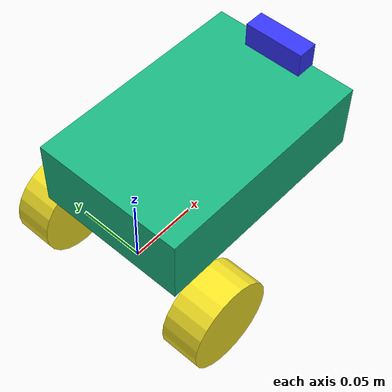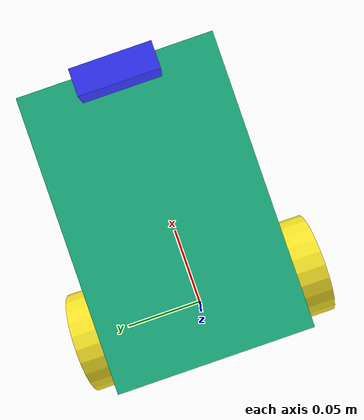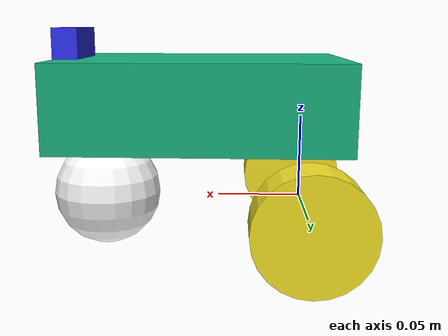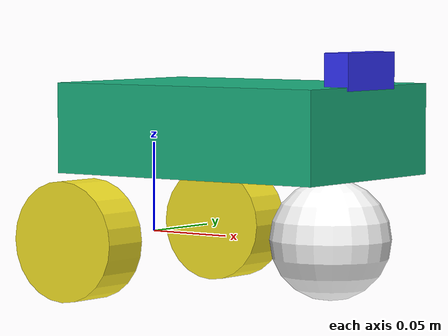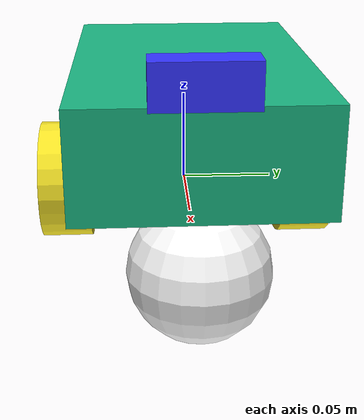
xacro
<?xml version="1.0"?>
<robot xmlns:xacro="http://www.ros.org/wiki/xacro"  name="robot">

    <!-- Example link -->
    <xacro:include filename="robot_core.xacro" />
    <xacro:include filename="sonar.xacro" />

</robot>

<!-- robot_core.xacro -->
<robot xmlns:xacro="http://www.ros.org/wiki/xacro" >

    <xacro:include filename="inertial_macros.xacro"/>

    <xacro:property name="chassis_length" value="0.1688"/>
    <xacro:property name="chassis_width" value="0.112"/>
    <xacro:property name="chassis_height" value="0.05"/>
    <xacro:property name="chassis_mass" value="1.0"/>
    <xacro:property name="wheel_radius" value="0.033"/>
    <xacro:property name="wheel_thickness" value="0.028"/>
    <xacro:property name="wheel_mass" value="0.3"/>
    <xacro:property name="wheel_offset_x" value="0.0238"/>
    <xacro:property name="wheel_offset_y" value="0.0675"/>
    <xacro:property name="wheel_offset_z" value="0.035"/>
    <xacro:property name="caster_wheel_radius" value="0.033"/>
    <xacro:property name="caster_wheel_mass" value="5"/>
    <xacro:property name="caster_wheel_offset_x" value="0.1438"/>
    <xacro:property name="caster_wheel_offset_z" value="${-caster_wheel_radius}"/>

    <material name="white">
        <color rgba="1 1 1 1"/>
    </material>

    <material name="yellow">
        <color rgba="0.96 0.89 0.15 1"/>
    </material>

    <material name="green">
        <color rgba="0.1 0.7 0.5 1"/>
    </material>

    <material name="orange">
        <color rgba="1 0.3 0.1 1"/>
    </material>

    <material name="blue">
        <color rgba="0.2 0.2 1 1"/>
    </material>

    <material name="black">
        <color rgba="0 0 0 1"/>
    </material>

    <material name="red">
        <color rgba="1 0 0 1"/>
    </material>

    <!-- BASE LINK -->

    <link name="base_link">

    </link>

    <!-- BASE_FOOTPRINT LINK -->

    <joint name="base_footprint_joint" type="fixed">
        <parent link="base_link"/>
        <child link="base_footprint"/>
        <origin xyz="0 0 0" rpy="0 0 0"/>
    </joint>

    <link name="base_footprint">
    </link>

    <!-- CHASSIS LINK -->

    <joint name="chassis_joint" type="fixed">
        <parent link="base_link"/>
        <child link="chassis"/>
        <origin xyz="${-wheel_offset_x} 0 ${wheel_offset_z}"/>
    </joint>

    <link name="chassis">
        <visual>
            <origin xyz="${chassis_length/2} 0 ${chassis_height/2}"/>
            <geometry>
                <box size="${chassis_length} ${chassis_width} ${chassis_height}"/>
            </geometry>
            <material name="green"/>
        </visual>
        <collision>
            <origin xyz="${chassis_length/2} 0 ${chassis_height/2}"/>
            <geometry>
                <box size="${chassis_length} ${chassis_width} ${chassis_height}"/>
            </geometry>
        </collision>
        <xacro:inertial_box mass="0.5" x="${chassis_length}" y="${chassis_width}" z="${chassis_height}">
            <origin xyz="${chassis_length/2} 0 ${chassis_height/2}" rpy="0 0 0"/>
        </xacro:inertial_box>
    </link>

    <gazebo reference="chassis">
        <material>Gazebo/Green</material>
    </gazebo>

    <!-- LEFT WHEEL LINK -->

    <joint name="left_wheel_joint" type="continuous">
        <parent link="base_link"/>
        <child link="left_wheel"/>
        <origin xyz="0 ${wheel_offset_y} 0" rpy="-${pi/2} 0 0"/>
        <axis xyz="0 0 1"/>
    </joint>

    <link name="left_wheel">
        <visual>
            <geometry>
                <cylinder radius="${wheel_radius}" length="${wheel_thickness}"/>
            </geometry>
            <material name="yellow"/>
        </visual>
        <collision>
            <geometry>
                <sphere radius="${wheel_radius}"/>
            </geometry>
        </collision>
        <xacro:inertial_cylinder mass="${wheel_mass}" length="${wheel_thickness}" radius="${wheel_radius}">
            <origin xyz="0 0 0" rpy="0 0 0"/>
        </xacro:inertial_cylinder>
    </link>

    <gazebo reference="left_wheel">
        <material>Gazebo/Yellow</material>
    </gazebo>

    <!-- RIGHT WHEEL LINK -->

    <joint name="right_wheel_joint" type="continuous">
        <parent link="base_link"/>
        <child link="right_wheel"/>
        <origin xyz="0 ${-wheel_offset_y} 0" rpy="${pi/2} 0 0" />
        <axis xyz="0 0 -1"/>
    </joint>

    <link name="right_wheel">
        <visual>
            <geometry>
                <cylinder radius="${wheel_radius}" length="${wheel_thickness}"/>
            </geometry>
            <material name="yellow"/>
        </visual>
        <collision>
            <geometry>
                <sphere radius="${wheel_radius}"/>
            </geometry>
        </collision>
        <xacro:inertial_cylinder mass="${wheel_mass}" length="${wheel_thickness}" radius="${wheel_radius}">
            <origin xyz="0 0 0" rpy="0 0 0"/>
        </xacro:inertial_cylinder>
    </link>

    <gazebo reference="right_wheel">
        <material>Gazebo/Yellow</material>
    </gazebo>

    <!-- CASTER WHEEL LINK -->

    <joint name="caster_wheel_joint" type="fixed">
        <parent link="chassis"/>
        <child link="caster_wheel"/>
        <origin xyz="${caster_wheel_offset_x} 0 ${caster_wheel_offset_z}"/>
    </joint>

    <link name="caster_wheel">
        <visual>
            <geometry>
                <sphere radius="${caster_wheel_radius}"/>
            </geometry>
            <material name="white"/>
        </visual>
        <collision>
            <geometry>
                <sphere radius="${caster_wheel_radius}"/>
            </geometry>
        </collision>
        <xacro:inertial_sphere mass="${caster_wheel_mass}" radius="${caster_wheel_radius}">
            <origin xyz="0 0 0" rpy="0 0 0"/>
        </xacro:inertial_sphere>
    </link>

    <gazebo reference="caster_wheel">
        <material>Gazebo/White</material>
        <mu1 value="0.001"/>
        <mu2 value="0.001"/>
    </gazebo>

</robot>

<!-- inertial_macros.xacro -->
<robot xmlns:xacro="http://www.ros.org/wiki/xacro" >

    <!-- Specify some standard inertial calculations https://en.wikipedia.org/wiki/List_of_moments_of_inertia -->
    <!-- These make use of xacro's mathematical functionality -->

    <xacro:macro name="inertial_sphere" params="mass radius *origin">
        <inertial>
            <xacro:insert_block name="origin"/>
            <mass value="${mass}" />
            <inertia ixx="${(2/5) * mass * (radius*radius)}" ixy="0.0" ixz="0.0"
                    iyy="${(2/5) * mass * (radius*radius)}" iyz="0.0"
                    izz="${(2/5) * mass * (radius*radius)}" />
        </inertial>
    </xacro:macro>

    <xacro:macro name="inertial_box" params="mass x y z *origin">
        <inertial>
            <xacro:insert_block name="origin"/>
            <mass value="${mass}" />
            <inertia ixx="${(1/12) * mass * (y*y+z*z)}" ixy="0.0" ixz="0.0"
                    iyy="${(1/12) * mass * (x*x+z*z)}" iyz="0.0"
                    izz="${(1/12) * mass * (x*x+y*y)}" />
        </inertial>
    </xacro:macro>

    <xacro:macro name="inertial_cylinder" params="mass length radius *origin">
        <inertial>
            <xacro:insert_block name="origin"/>
            <mass value="${mass}"/>
            <inertia ixx="${(1/12) * mass * (3*radius*radius + length*length)}" ixy="0.0" ixz="0.0"
                    iyy="${(1/12) * mass * (3*radius*radius + length*length)}" iyz="0.0"
                    izz="${(1/2) * mass * (radius*radius)}"/>
        </inertial>
    </xacro:macro>

</robot>

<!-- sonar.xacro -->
<robot xmlns:xacro="http://ros.org/wiki/xacro">
    <joint name="sonar_joint" type="fixed">
      <parent link="chassis"/>
      <child link="sonar_link"/>
      <origin xyz="0.162 0 0.058" rpy="0 0 0" />
    </joint>

    <link name="sonar_link">
      <inertial>
        <mass value="0.001" />
        <origin xyz="0 0 0" rpy="0 0 0" />
        <inertia ixx="0.000000017" ixy="0" ixz="0" iyy="0.000000017" iyz="0" izz="0.000000017" />
      </inertial>
      <visual>
        <geometry>
          <box size="0.015 0.045 0.02" />
        </geometry>
        <material name="blue"/>
      </visual>
      <collision>
        <origin xyz="0 0 0" rpy="0 0 0" />
        <geometry>
          <box size="0.01 0.01 0.01" />
        </geometry>
      </collision>
    </link>
</robot>
